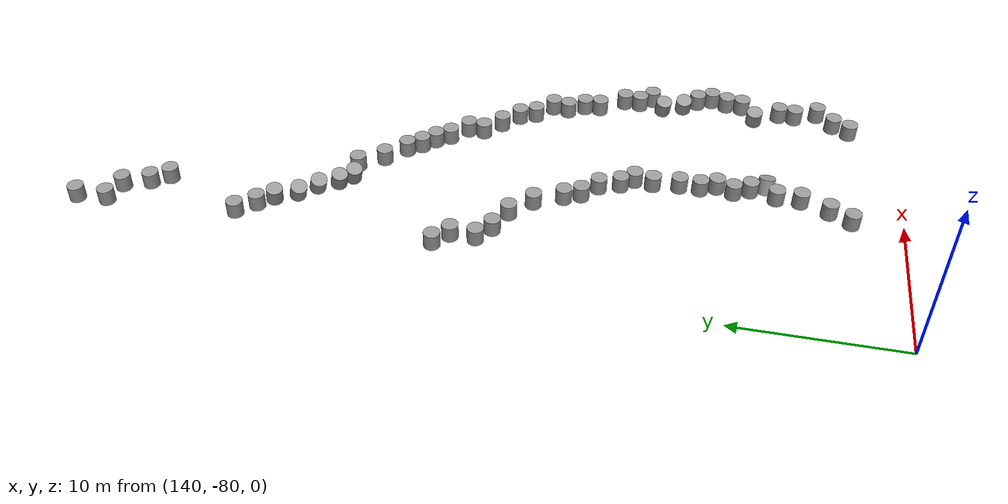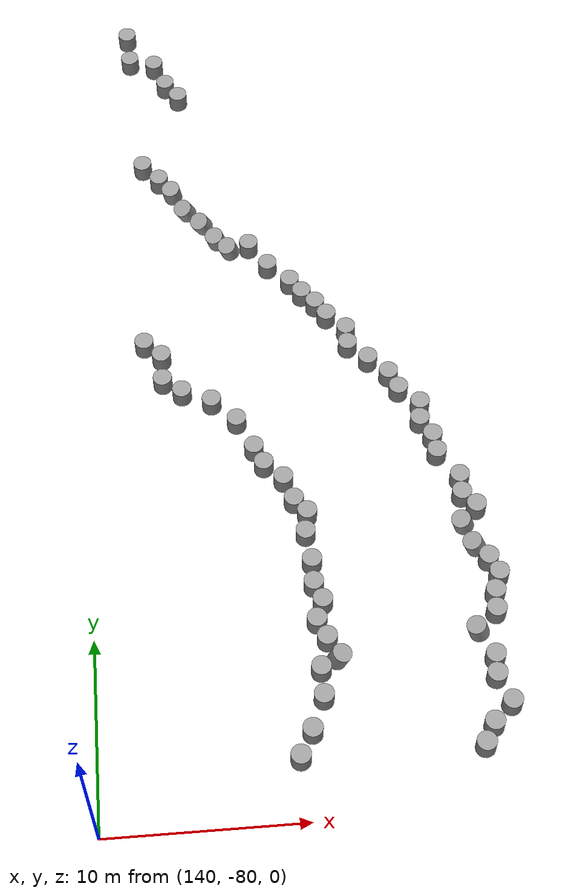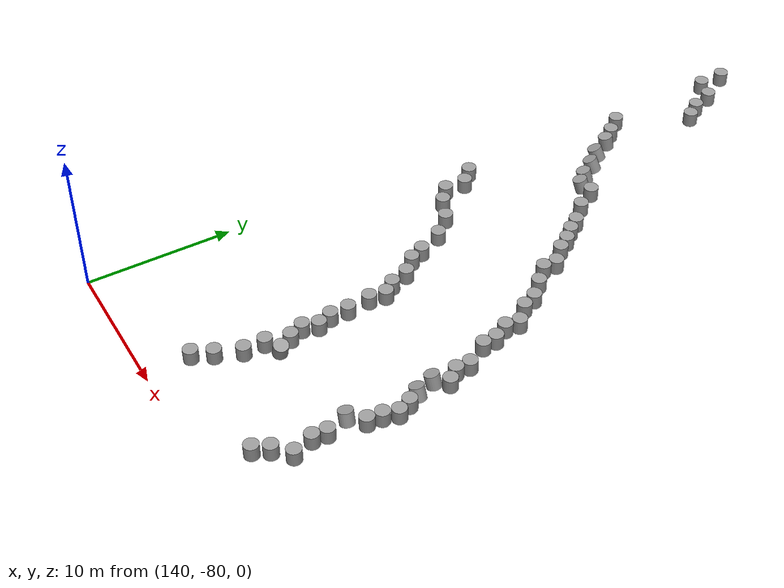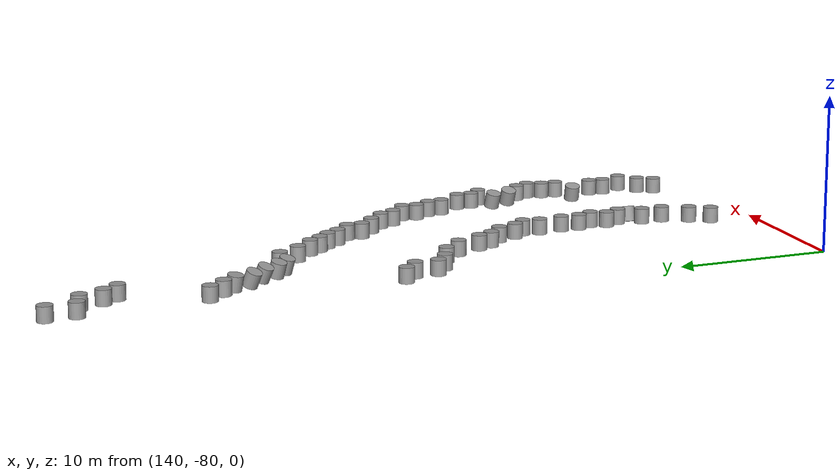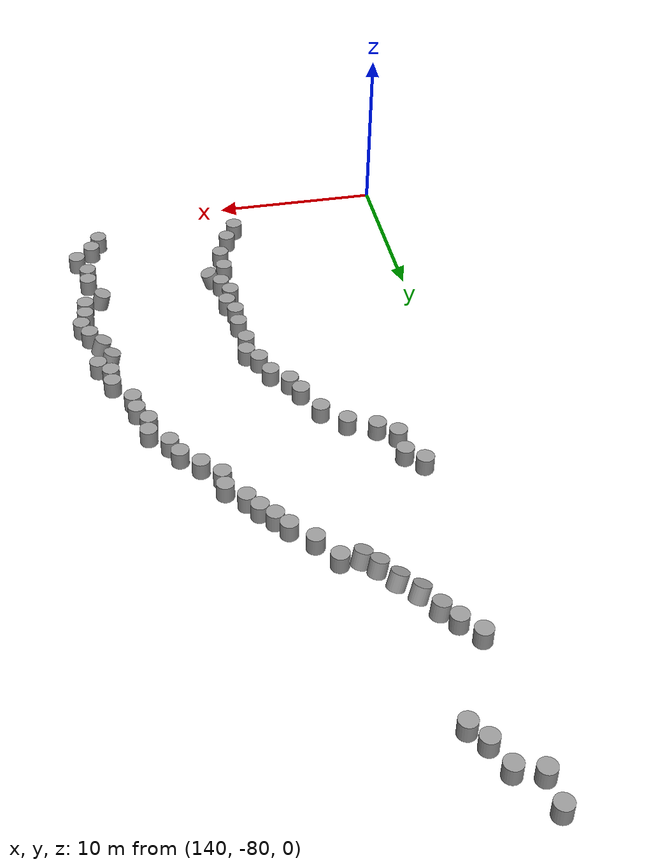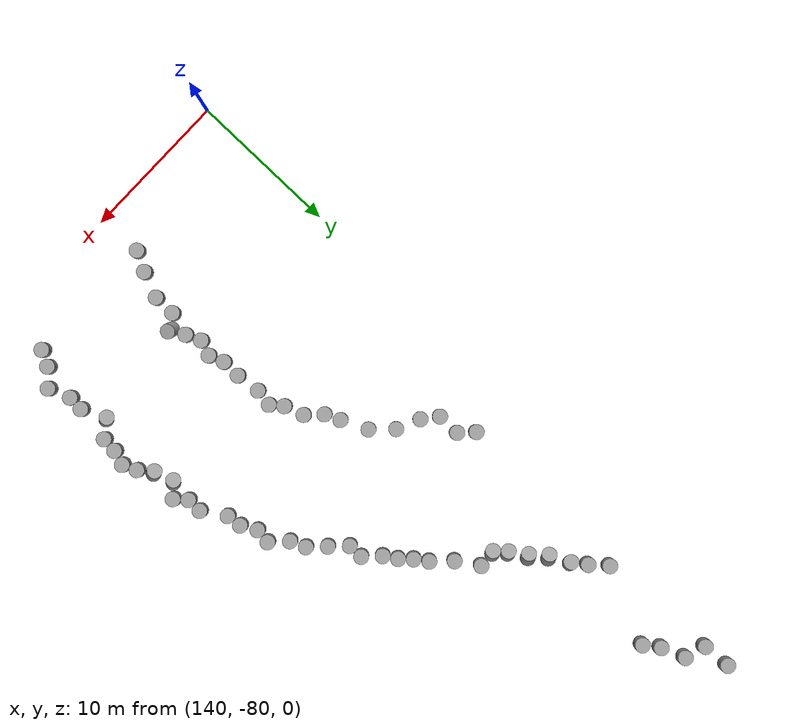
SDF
<sdf version="1.7">
 <world name="default">
  <model name="unit_cylinder_85_clone_244_clone_579">
   <pose>142.895 -31.1309 0.4513 2.2e-05 -2.2e-05 0.000469</pose>
   <link name="link">
    <inertial>
     <mass>1</mass>
     <inertia><ixx>0.145833</ixx><ixy>0</ixy><ixz>0</ixz><iyy>0.145833</iyy><iyz>0</iyz><izz>0.125</izz></inertia>
    </inertial>
    <collision name="collision">
     <geometry><cylinder><radius>0.5</radius><length>1</length></cylinder></geometry>
    </collision>
    <visual name="visual">
     <geometry><cylinder><radius>0.5</radius><length>1</length></cylinder></geometry>
     <material>
      <script><name>Gazebo/Grey</name><uri>file://media/materials/scripts/gazebo.material</uri></script>
     </material>
    </visual>
   </link>
  </model>
  <model name="unit_cylinder_85_clone_244_clone_580">
   <pose>143 -33.0001 0.451267 1.7e-05 -2.3e-05 0.00053</pose>
   <link name="link">
    <inertial>
     <mass>1</mass>
     <inertia><ixx>0.145833</ixx><ixy>0</ixy><ixz>0</ixz><iyy>0.145833</iyy><iyz>0</iyz><izz>0.125</izz></inertia>
    </inertial>
    <collision name="collision">
     <geometry><cylinder><radius>0.5</radius><length>1</length></cylinder></geometry>
    </collision>
    <visual name="visual">
     <geometry><cylinder><radius>0.5</radius><length>1</length></cylinder></geometry>
     <material>
      <script><name>Gazebo/Grey</name><uri>file://media/materials/scripts/gazebo.material</uri></script>
     </material>
    </visual>
   </link>
  </model>
  <model name="unit_cylinder_85_clone_244_clone_581">
   <pose>144.402 -33.4464 0.451295 1.4e-05 -3e-05 0.000472</pose>
   <link name="link">
    <inertial>
     <mass>1</mass>
     <inertia><ixx>0.145833</ixx><ixy>0</ixy><ixz>0</ixz><iyy>0.145833</iyy><iyz>0</iyz><izz>0.125</izz></inertia>
    </inertial>
    <collision name="collision">
     <geometry><cylinder><radius>0.5</radius><length>1</length></cylinder></geometry>
    </collision>
    <visual name="visual">
     <geometry><cylinder><radius>0.5</radius><length>1</length></cylinder></geometry>
     <material>
      <script><name>Gazebo/Grey</name><uri>file://media/materials/scripts/gazebo.material</uri></script>
     </material>
    </visual>
   </link>
  </model>
  <model name="unit_cylinder_85_clone_244_clone_582">
   <pose>145 -35 0.451266 1.9e-05 -2.4e-05 0.000469</pose>
   <link name="link">
    <inertial>
     <mass>1</mass>
     <inertia><ixx>0.145833</ixx><ixy>0</ixy><ixz>0</ixz><iyy>0.145833</iyy><iyz>0</iyz><izz>0.125</izz></inertia>
    </inertial>
    <collision name="collision">
     <geometry><cylinder><radius>0.5</radius><length>1</length></cylinder></geometry>
    </collision>
    <visual name="visual">
     <geometry><cylinder><radius>0.5</radius><length>1</length></cylinder></geometry>
     <material>
      <script><name>Gazebo/Grey</name><uri>file://media/materials/scripts/gazebo.material</uri></script>
     </material>
    </visual>
   </link>
  </model>
  <model name="unit_cylinder_85_clone_244_clone_583">
   <pose>145.705 -36.0011 0.451266 1.7e-05 -2.2e-05 0.00047</pose>
   <link name="link">
    <inertial>
     <mass>1</mass>
     <inertia><ixx>0.145833</ixx><ixy>0</ixy><ixz>0</ixz><iyy>0.145833</iyy><iyz>0</iyz><izz>0.125</izz></inertia>
    </inertial>
    <collision name="collision">
     <geometry><cylinder><radius>0.5</radius><length>1</length></cylinder></geometry>
    </collision>
    <visual name="visual">
     <geometry><cylinder><radius>0.5</radius><length>1</length></cylinder></geometry>
     <material>
      <script><name>Gazebo/Grey</name><uri>file://media/materials/scripts/gazebo.material</uri></script>
     </material>
    </visual>
   </link>
  </model>
  <model name="unit_cylinder_85_clone_244_clone_684">
   <pose>143.109 -53.1294 0.449992 0 -0 0.000582</pose>
   <link name="link">
    <inertial>
     <mass>1</mass>
     <inertia><ixx>0.145833</ixx><ixy>0</ixy><ixz>0</ixz><iyy>0.145833</iyy><iyz>0</iyz><izz>0.125</izz></inertia>
    </inertial>
    <collision name="collision">
     <geometry><cylinder><radius>0.5</radius><length>1</length></cylinder></geometry>
    </collision>
    <visual name="visual">
     <geometry><cylinder><radius>0.5</radius><length>1</length></cylinder></geometry>
     <material>
      <script><name>Gazebo/Grey</name><uri>file://media/materials/scripts/gazebo.material</uri></script>
     </material>
    </visual>
   </link>
  </model>
  <model name="unit_cylinder_85_clone_244_clone_685">
   <pose>143.999 -54.0003 0.450646 0.000793 -0.001022 0.000211</pose>
   <link name="link">
    <inertial>
     <mass>1</mass>
     <inertia><ixx>0.145833</ixx><ixy>0</ixy><ixz>0</ixz><iyy>0.145833</iyy><iyz>0</iyz><izz>0.125</izz></inertia>
    </inertial>
    <collision name="collision">
     <geometry><cylinder><radius>0.5</radius><length>1</length></cylinder></geometry>
    </collision>
    <visual name="visual">
     <geometry><cylinder><radius>0.5</radius><length>1</length></cylinder></geometry>
     <material>
      <script><name>Gazebo/Grey</name><uri>file://media/materials/scripts/gazebo.material</uri></script>
     </material>
    </visual>
   </link>
  </model>
  <model name="unit_cylinder_85_clone_244_clone_686">
   <pose>144 -55.5129 0.449998 -6e-06 -1e-06 0.000487</pose>
   <link name="link">
    <inertial>
     <mass>1</mass>
     <inertia><ixx>0.145833</ixx><ixy>0</ixy><ixz>0</ixz><iyy>0.145833</iyy><iyz>0</iyz><izz>0.125</izz></inertia>
    </inertial>
    <collision name="collision">
     <geometry><cylinder><radius>0.5</radius><length>1</length></cylinder></geometry>
    </collision>
    <visual name="visual">
     <geometry><cylinder><radius>0.5</radius><length>1</length></cylinder></geometry>
     <material>
      <script><name>Gazebo/Grey</name><uri>file://media/materials/scripts/gazebo.material</uri></script>
     </material>
    </visual>
   </link>
  </model>
  <model name="unit_cylinder_85_clone_244_clone_695">
   <pose>145.043 -42.9427 0.478763 0.109918 -0.131961 0.024254</pose>
   <link name="link">
    <inertial>
     <mass>1</mass>
     <inertia><ixx>0.145833</ixx><ixy>0</ixy><ixz>0</ixz><iyy>0.145833</iyy><iyz>0</iyz><izz>0.125</izz></inertia>
    </inertial>
    <collision name="collision">
     <geometry><cylinder><radius>0.5</radius><length>1</length></cylinder></geometry>
    </collision>
    <visual name="visual">
     <geometry><cylinder><radius>0.5</radius><length>1</length></cylinder></geometry>
     <material>
      <script><name>Gazebo/Grey</name><uri>file://media/materials/scripts/gazebo.material</uri></script>
     </material>
    </visual>
   </link>
  </model>
  <model name="unit_cylinder_85_clone_244_clone_697">
   <pose>146.602 -45.1969 0.407513 0.258595 -0.320045 0.023068</pose>
   <link name="link">
    <inertial>
     <mass>1</mass>
     <inertia><ixx>0.145833</ixx><ixy>0</ixy><ixz>0</ixz><iyy>0.145833</iyy><iyz>0</iyz><izz>0.125</izz></inertia>
    </inertial>
    <collision name="collision">
     <geometry><cylinder><radius>0.5</radius><length>1</length></cylinder></geometry>
    </collision>
    <visual name="visual">
     <geometry><cylinder><radius>0.5</radius><length>1</length></cylinder></geometry>
     <material>
      <script><name>Gazebo/Grey</name><uri>file://media/materials/scripts/gazebo.material</uri></script>
     </material>
    </visual>
   </link>
  </model>
  <model name="unit_cylinder_85_clone_244_clone_698">
   <pose>143.464 -41.0024 0.453399 0.005885 -0.00531 0.005545</pose>
   <link name="link">
    <inertial>
     <mass>1</mass>
     <inertia><ixx>0.145833</ixx><ixy>0</ixy><ixz>0</ixz><iyy>0.145833</iyy><iyz>0</iyz><izz>0.125</izz></inertia>
    </inertial>
    <collision name="collision">
     <geometry><cylinder><radius>0.5</radius><length>1</length></cylinder></geometry>
    </collision>
    <visual name="visual">
     <geometry><cylinder><radius>0.5</radius><length>1</length></cylinder></geometry>
     <material>
      <script><name>Gazebo/Grey</name><uri>file://media/materials/scripts/gazebo.material</uri></script>
     </material>
    </visual>
   </link>
  </model>
  <model name="unit_cylinder_85_clone_244_clone_700">
   <pose>145.725 -44.2146 0.404015 0.283249 -0.279741 -0.089596</pose>
   <link name="link">
    <inertial>
     <mass>1</mass>
     <inertia><ixx>0.145833</ixx><ixy>0</ixy><ixz>0</ixz><iyy>0.145833</iyy><iyz>0</iyz><izz>0.125</izz></inertia>
    </inertial>
    <collision name="collision">
     <geometry><cylinder><radius>0.5</radius><length>1</length></cylinder></geometry>
    </collision>
    <visual name="visual">
     <geometry><cylinder><radius>0.5</radius><length>1</length></cylinder></geometry>
     <material>
      <script><name>Gazebo/Grey</name><uri>file://media/materials/scripts/gazebo.material</uri></script>
     </material>
    </visual>
   </link>
  </model>
  <model name="unit_cylinder_85_clone_244_clone_701">
   <pose>144.351 -42.0649 0.45126 -7e-06 8e-06 0.010956</pose>
   <link name="link">
    <inertial>
     <mass>1</mass>
     <inertia><ixx>0.145833</ixx><ixy>0</ixy><ixz>0</ixz><iyy>0.145833</iyy><iyz>0</iyz><izz>0.125</izz></inertia>
    </inertial>
    <collision name="collision">
     <geometry><cylinder><radius>0.5</radius><length>1</length></cylinder></geometry>
    </collision>
    <visual name="visual">
     <geometry><cylinder><radius>0.5</radius><length>1</length></cylinder></geometry>
     <material>
      <script><name>Gazebo/Grey</name><uri>file://media/materials/scripts/gazebo.material</uri></script>
     </material>
    </visual>
   </link>
  </model>
  <model name="unit_cylinder_85_clone_244_clone_696">
   <pose>148.016 -47.0282 0.373863 0.072571 -0.28647 0.4723</pose>
   <link name="link">
    <inertial>
     <mass>1</mass>
     <inertia><ixx>0.145833</ixx><ixy>0</ixy><ixz>0</ixz><iyy>0.145833</iyy><iyz>0</iyz><izz>0.125</izz></inertia>
    </inertial>
    <collision name="collision">
     <geometry><cylinder><radius>0.5</radius><length>1</length></cylinder></geometry>
    </collision>
    <visual name="visual">
     <geometry><cylinder><radius>0.5</radius><length>1</length></cylinder></geometry>
     <material>
      <script><name>Gazebo/Grey</name><uri>file://media/materials/scripts/gazebo.material</uri></script>
     </material>
    </visual>
   </link>
  </model>
  <model name="unit_cylinder_85_clone_244_clone_702">
   <pose>147.334 -46.2965 0.364822 0.249156 -0.101854 -0.468961</pose>
   <link name="link">
    <inertial>
     <mass>1</mass>
     <inertia><ixx>0.145833</ixx><ixy>0</ixy><ixz>0</ixz><iyy>0.145833</iyy><iyz>0</iyz><izz>0.125</izz></inertia>
    </inertial>
    <collision name="collision">
     <geometry><cylinder><radius>0.5</radius><length>1</length></cylinder></geometry>
    </collision>
    <visual name="visual">
     <geometry><cylinder><radius>0.5</radius><length>1</length></cylinder></geometry>
     <material>
      <script><name>Gazebo/Grey</name><uri>file://media/materials/scripts/gazebo.material</uri></script>
     </material>
    </visual>
   </link>
  </model>
  <model name="unit_cylinder_85_clone_244_clone_703">
   <pose>149.132 -47.0003 0.451254 -1.6e-05 2e-05 -0.00028</pose>
   <link name="link">
    <inertial>
     <mass>1</mass>
     <inertia><ixx>0.145833</ixx><ixy>0</ixy><ixz>0</ixz><iyy>0.145833</iyy><iyz>0</iyz><izz>0.125</izz></inertia>
    </inertial>
    <collision name="collision">
     <geometry><cylinder><radius>0.5</radius><length>1</length></cylinder></geometry>
    </collision>
    <visual name="visual">
     <geometry><cylinder><radius>0.5</radius><length>1</length></cylinder></geometry>
     <material>
      <script><name>Gazebo/Grey</name><uri>file://media/materials/scripts/gazebo.material</uri></script>
     </material>
    </visual>
   </link>
  </model>
  <model name="unit_cylinder_85_clone_244_clone_704">
   <pose>150.081 -48.4573 0.451275 -2.8e-05 4.2e-05 0.00037</pose>
   <link name="link">
    <inertial>
     <mass>1</mass>
     <inertia><ixx>0.145833</ixx><ixy>0</ixy><ixz>0</ixz><iyy>0.145833</iyy><iyz>0</iyz><izz>0.125</izz></inertia>
    </inertial>
    <collision name="collision">
     <geometry><cylinder><radius>0.5</radius><length>1</length></cylinder></geometry>
    </collision>
    <visual name="visual">
     <geometry><cylinder><radius>0.5</radius><length>1</length></cylinder></geometry>
     <material>
      <script><name>Gazebo/Grey</name><uri>file://media/materials/scripts/gazebo.material</uri></script>
     </material>
    </visual>
   </link>
  </model>
  <model name="unit_cylinder_85_clone_244_clone_705">
   <pose>151.222 -49.619 0.451251 -2e-06 4e-06 -0.005144</pose>
   <link name="link">
    <inertial>
     <mass>1</mass>
     <inertia><ixx>0.145833</ixx><ixy>0</ixy><ixz>0</ixz><iyy>0.145833</iyy><iyz>0</iyz><izz>0.125</izz></inertia>
    </inertial>
    <collision name="collision">
     <geometry><cylinder><radius>0.5</radius><length>1</length></cylinder></geometry>
    </collision>
    <visual name="visual">
     <geometry><cylinder><radius>0.5</radius><length>1</length></cylinder></geometry>
     <material>
      <script><name>Gazebo/Grey</name><uri>file://media/materials/scripts/gazebo.material</uri></script>
     </material>
    </visual>
   </link>
  </model>
  <model name="unit_cylinder_85_clone_244_clone_706">
   <pose>151.801 -50.444 0.45125 -5e-06 1e-05 -0.005197</pose>
   <link name="link">
    <inertial>
     <mass>1</mass>
     <inertia><ixx>0.145833</ixx><ixy>0</ixy><ixz>0</ixz><iyy>0.145833</iyy><iyz>0</iyz><izz>0.125</izz></inertia>
    </inertial>
    <collision name="collision">
     <geometry><cylinder><radius>0.5</radius><length>1</length></cylinder></geometry>
    </collision>
    <visual name="visual">
     <geometry><cylinder><radius>0.5</radius><length>1</length></cylinder></geometry>
     <material>
      <script><name>Gazebo/Grey</name><uri>file://media/materials/scripts/gazebo.material</uri></script>
     </material>
    </visual>
   </link>
  </model>
  <model name="unit_cylinder_85_clone_244_clone_707">
   <pose>152.476 -51.1882 0.451249 -6e-06 -3e-06 9.5e-05</pose>
   <link name="link">
    <inertial>
     <mass>1</mass>
     <inertia><ixx>0.145833</ixx><ixy>0</ixy><ixz>0</ixz><iyy>0.145833</iyy><iyz>0</iyz><izz>0.125</izz></inertia>
    </inertial>
    <collision name="collision">
     <geometry><cylinder><radius>0.5</radius><length>1</length></cylinder></geometry>
    </collision>
    <visual name="visual">
     <geometry><cylinder><radius>0.5</radius><length>1</length></cylinder></geometry>
     <material>
      <script><name>Gazebo/Grey</name><uri>file://media/materials/scripts/gazebo.material</uri></script>
     </material>
    </visual>
   </link>
  </model>
  <model name="unit_cylinder_85_clone_244_clone_708">
   <pose>154 -53.0057 0.451249 -2.1e-05 -0 -0.00096</pose>
   <link name="link">
    <inertial>
     <mass>1</mass>
     <inertia><ixx>0.145833</ixx><ixy>0</ixy><ixz>0</ixz><iyy>0.145833</iyy><iyz>0</iyz><izz>0.125</izz></inertia>
    </inertial>
    <collision name="collision">
     <geometry><cylinder><radius>0.5</radius><length>1</length></cylinder></geometry>
    </collision>
    <visual name="visual">
     <geometry><cylinder><radius>0.5</radius><length>1</length></cylinder></geometry>
     <material>
      <script><name>Gazebo/Grey</name><uri>file://media/materials/scripts/gazebo.material</uri></script>
     </material>
    </visual>
   </link>
  </model>
  <model name="unit_cylinder_85_clone_244_clone_709">
   <pose>153.019 -52.0279 0.45125 -8e-06 7e-06 -0.000444</pose>
   <link name="link">
    <inertial>
     <mass>1</mass>
     <inertia><ixx>0.145833</ixx><ixy>0</ixy><ixz>0</ixz><iyy>0.145833</iyy><iyz>0</iyz><izz>0.125</izz></inertia>
    </inertial>
    <collision name="collision">
     <geometry><cylinder><radius>0.5</radius><length>1</length></cylinder></geometry>
    </collision>
    <visual name="visual">
     <geometry><cylinder><radius>0.5</radius><length>1</length></cylinder></geometry>
     <material>
      <script><name>Gazebo/Grey</name><uri>file://media/materials/scripts/gazebo.material</uri></script>
     </material>
    </visual>
   </link>
  </model>
  <model name="unit_cylinder_85_clone_244_clone_710">
   <pose>155 -54.9999 0.451265 -1.9e-05 2.5e-05 0.00033</pose>
   <link name="link">
    <inertial>
     <mass>1</mass>
     <inertia><ixx>0.145833</ixx><ixy>0</ixy><ixz>0</ixz><iyy>0.145833</iyy><iyz>0</iyz><izz>0.125</izz></inertia>
    </inertial>
    <collision name="collision">
     <geometry><cylinder><radius>0.5</radius><length>1</length></cylinder></geometry>
    </collision>
    <visual name="visual">
     <geometry><cylinder><radius>0.5</radius><length>1</length></cylinder></geometry>
     <material>
      <script><name>Gazebo/Grey</name><uri>file://media/materials/scripts/gazebo.material</uri></script>
     </material>
    </visual>
   </link>
  </model>
  <model name="unit_cylinder_85_clone_244_clone_711">
   <pose>156.425 -57.0001 0.451263 -1.2e-05 2.5e-05 0.000409</pose>
   <link name="link">
    <inertial>
     <mass>1</mass>
     <inertia><ixx>0.145833</ixx><ixy>0</ixy><ixz>0</ixz><iyy>0.145833</iyy><iyz>0</iyz><izz>0.125</izz></inertia>
    </inertial>
    <collision name="collision">
     <geometry><cylinder><radius>0.5</radius><length>1</length></cylinder></geometry>
    </collision>
    <visual name="visual">
     <geometry><cylinder><radius>0.5</radius><length>1</length></cylinder></geometry>
     <material>
      <script><name>Gazebo/Grey</name><uri>file://media/materials/scripts/gazebo.material</uri></script>
     </material>
    </visual>
   </link>
  </model>
  <model name="unit_cylinder_85_clone_244_clone_712">
   <pose>157.459 -57.9999 0.45125 3e-06 5e-06 0.00049</pose>
   <link name="link">
    <inertial>
     <mass>1</mass>
     <inertia><ixx>0.145833</ixx><ixy>0</ixy><ixz>0</ixz><iyy>0.145833</iyy><iyz>0</iyz><izz>0.125</izz></inertia>
    </inertial>
    <collision name="collision">
     <geometry><cylinder><radius>0.5</radius><length>1</length></cylinder></geometry>
    </collision>
    <visual name="visual">
     <geometry><cylinder><radius>0.5</radius><length>1</length></cylinder></geometry>
     <material>
      <script><name>Gazebo/Grey</name><uri>file://media/materials/scripts/gazebo.material</uri></script>
     </material>
    </visual>
   </link>
  </model>
  <model name="unit_cylinder_85_clone_244_clone_713">
   <pose>157.896 -60.014 0.451261 -1.8e-05 3e-05 -0.00103</pose>
   <link name="link">
    <inertial>
     <mass>1</mass>
     <inertia><ixx>0.145833</ixx><ixy>0</ixy><ixz>0</ixz><iyy>0.145833</iyy><iyz>0</iyz><izz>0.125</izz></inertia>
    </inertial>
    <collision name="collision">
     <geometry><cylinder><radius>0.5</radius><length>1</length></cylinder></geometry>
    </collision>
    <visual name="visual">
     <geometry><cylinder><radius>0.5</radius><length>1</length></cylinder></geometry>
     <material>
      <script><name>Gazebo/Grey</name><uri>file://media/materials/scripts/gazebo.material</uri></script>
     </material>
    </visual>
   </link>
  </model>
  <model name="unit_cylinder_85_clone_244_clone_714">
   <pose>158.001 -61.0085 0.451265 -1.3e-05 4.9e-05 0.005868</pose>
   <link name="link">
    <inertial>
     <mass>1</mass>
     <inertia><ixx>0.145833</ixx><ixy>0</ixy><ixz>0</ixz><iyy>0.145833</iyy><iyz>0</iyz><izz>0.125</izz></inertia>
    </inertial>
    <collision name="collision">
     <geometry><cylinder><radius>0.5</radius><length>1</length></cylinder></geometry>
    </collision>
    <visual name="visual">
     <geometry><cylinder><radius>0.5</radius><length>1</length></cylinder></geometry>
     <material>
      <script><name>Gazebo/Grey</name><uri>file://media/materials/scripts/gazebo.material</uri></script>
     </material>
    </visual>
   </link>
  </model>
  <model name="unit_cylinder_85_clone_244_clone_715">
   <pose>158.986 -63.5418 0.451215 -7.8e-05 0.000287 0.030668</pose>
   <link name="link">
    <inertial>
     <mass>1</mass>
     <inertia><ixx>0.145833</ixx><ixy>0</ixy><ixz>0</ixz><iyy>0.145833</iyy><iyz>0</iyz><izz>0.125</izz></inertia>
    </inertial>
    <collision name="collision">
     <geometry><cylinder><radius>0.5</radius><length>1</length></cylinder></geometry>
    </collision>
    <visual name="visual">
     <geometry><cylinder><radius>0.5</radius><length>1</length></cylinder></geometry>
     <material>
      <script><name>Gazebo/Grey</name><uri>file://media/materials/scripts/gazebo.material</uri></script>
     </material>
    </visual>
   </link>
  </model>
  <model name="unit_cylinder_85_clone_244_clone_716">
   <pose>159.637 -64.3099 0.451123 -1.8e-05 0.000256 0.066203</pose>
   <link name="link">
    <inertial>
     <mass>1</mass>
     <inertia><ixx>0.145833</ixx><ixy>0</ixy><ixz>0</ixz><iyy>0.145833</iyy><iyz>0</iyz><izz>0.125</izz></inertia>
    </inertial>
    <collision name="collision">
     <geometry><cylinder><radius>0.5</radius><length>1</length></cylinder></geometry>
    </collision>
    <visual name="visual">
     <geometry><cylinder><radius>0.5</radius><length>1</length></cylinder></geometry>
     <material>
      <script><name>Gazebo/Grey</name><uri>file://media/materials/scripts/gazebo.material</uri></script>
     </material>
    </visual>
   </link>
  </model>
  <model name="unit_cylinder_85_clone_244_clone_717">
   <pose>158.847 -65.088 0.360946 0.098918 -0.238436 -0.069266</pose>
   <link name="link">
    <inertial>
     <mass>1</mass>
     <inertia><ixx>0.145833</ixx><ixy>0</ixy><ixz>0</ixz><iyy>0.145833</iyy><iyz>0</iyz><izz>0.125</izz></inertia>
    </inertial>
    <collision name="collision">
     <geometry><cylinder><radius>0.5</radius><length>1</length></cylinder></geometry>
    </collision>
    <visual name="visual">
     <geometry><cylinder><radius>0.5</radius><length>1</length></cylinder></geometry>
     <material>
      <script><name>Gazebo/Grey</name><uri>file://media/materials/scripts/gazebo.material</uri></script>
     </material>
    </visual>
   </link>
  </model>
  <model name="unit_cylinder_85_clone_244_clone_718">
   <pose>158.998 -62.5414 0.451197 3e-06 0.000122 -0.006848</pose>
   <link name="link">
    <inertial>
     <mass>1</mass>
     <inertia><ixx>0.145833</ixx><ixy>0</ixy><ixz>0</ixz><iyy>0.145833</iyy><iyz>0</iyz><izz>0.125</izz></inertia>
    </inertial>
    <collision name="collision">
     <geometry><cylinder><radius>0.5</radius><length>1</length></cylinder></geometry>
    </collision>
    <visual name="visual">
     <geometry><cylinder><radius>0.5</radius><length>1</length></cylinder></geometry>
     <material>
      <script><name>Gazebo/Grey</name><uri>file://media/materials/scripts/gazebo.material</uri></script>
     </material>
    </visual>
   </link>
  </model>
  <model name="unit_cylinder_85_clone_244_clone_719">
   <pose>157.342 -59.0003 0.451263 -1.4e-05 2.9e-05 0.000469</pose>
   <link name="link">
    <inertial>
     <mass>1</mass>
     <inertia><ixx>0.145833</ixx><ixy>0</ixy><ixz>0</ixz><iyy>0.145833</iyy><iyz>0</iyz><izz>0.125</izz></inertia>
    </inertial>
    <collision name="collision">
     <geometry><cylinder><radius>0.5</radius><length>1</length></cylinder></geometry>
    </collision>
    <visual name="visual">
     <geometry><cylinder><radius>0.5</radius><length>1</length></cylinder></geometry>
     <material>
      <script><name>Gazebo/Grey</name><uri>file://media/materials/scripts/gazebo.material</uri></script>
     </material>
    </visual>
   </link>
  </model>
  <model name="unit_cylinder_85_clone_244_clone_720">
   <pose>156 -56.0006 0.451256 -9e-06 1e-05 -0.001278</pose>
   <link name="link">
    <inertial>
     <mass>1</mass>
     <inertia><ixx>0.145833</ixx><ixy>0</ixy><ixz>0</ixz><iyy>0.145833</iyy><iyz>0</iyz><izz>0.125</izz></inertia>
    </inertial>
    <collision name="collision">
     <geometry><cylinder><radius>0.5</radius><length>1</length></cylinder></geometry>
    </collision>
    <visual name="visual">
     <geometry><cylinder><radius>0.5</radius><length>1</length></cylinder></geometry>
     <material>
      <script><name>Gazebo/Grey</name><uri>file://media/materials/scripts/gazebo.material</uri></script>
     </material>
    </visual>
   </link>
  </model>
  <model name="unit_cylinder_85_clone_244_clone_721">
   <pose>154.001 -54.0057 0.451265 -2.3e-05 2.1e-05 -0.002132</pose>
   <link name="link">
    <inertial>
     <mass>1</mass>
     <inertia><ixx>0.145833</ixx><ixy>0</ixy><ixz>0</ixz><iyy>0.145833</iyy><iyz>0</iyz><izz>0.125</izz></inertia>
    </inertial>
    <collision name="collision">
     <geometry><cylinder><radius>0.5</radius><length>1</length></cylinder></geometry>
    </collision>
    <visual name="visual">
     <geometry><cylinder><radius>0.5</radius><length>1</length></cylinder></geometry>
     <material>
      <script><name>Gazebo/Grey</name><uri>file://media/materials/scripts/gazebo.material</uri></script>
     </material>
    </visual>
   </link>
  </model>
  <model name="unit_cylinder_85_clone_244_clone_722">
   <pose>144.988 -56.3099 0.449994 -6e-06 -4e-06 0.000468</pose>
   <link name="link">
    <inertial>
     <mass>1</mass>
     <inertia><ixx>0.145833</ixx><ixy>0</ixy><ixz>0</ixz><iyy>0.145833</iyy><iyz>0</iyz><izz>0.125</izz></inertia>
    </inertial>
    <collision name="collision">
     <geometry><cylinder><radius>0.5</radius><length>1</length></cylinder></geometry>
    </collision>
    <visual name="visual">
     <geometry><cylinder><radius>0.5</radius><length>1</length></cylinder></geometry>
     <material>
      <script><name>Gazebo/Grey</name><uri>file://media/materials/scripts/gazebo.material</uri></script>
     </material>
    </visual>
   </link>
  </model>
  <model name="unit_cylinder_85_clone_244_clone_723">
   <pose>146.519 -57.0005 0.450756 0.000932 -0.001205 0.000438</pose>
   <link name="link">
    <inertial>
     <mass>1</mass>
     <inertia><ixx>0.145833</ixx><ixy>0</ixy><ixz>0</ixz><iyy>0.145833</iyy><iyz>0</iyz><izz>0.125</izz></inertia>
    </inertial>
    <collision name="collision">
     <geometry><cylinder><radius>0.5</radius><length>1</length></cylinder></geometry>
    </collision>
    <visual name="visual">
     <geometry><cylinder><radius>0.5</radius><length>1</length></cylinder></geometry>
     <material>
      <script><name>Gazebo/Grey</name><uri>file://media/materials/scripts/gazebo.material</uri></script>
     </material>
    </visual>
   </link>
  </model>
  <model name="unit_cylinder_85_clone_244_clone_724">
   <pose>147.761 -58.2785 0.450989 0.001215 -0.001563 0.000468</pose>
   <link name="link">
    <inertial>
     <mass>1</mass>
     <inertia><ixx>0.145833</ixx><ixy>0</ixy><ixz>0</ixz><iyy>0.145833</iyy><iyz>0</iyz><izz>0.125</izz></inertia>
    </inertial>
    <collision name="collision">
     <geometry><cylinder><radius>0.5</radius><length>1</length></cylinder></geometry>
    </collision>
    <visual name="visual">
     <geometry><cylinder><radius>0.5</radius><length>1</length></cylinder></geometry>
     <material>
      <script><name>Gazebo/Grey</name><uri>file://media/materials/scripts/gazebo.material</uri></script>
     </material>
    </visual>
   </link>
  </model>
  <model name="unit_cylinder_85_clone_244_clone_725">
   <pose>148.557 -60.0004 0.450155 0.000218 -0.000236 0.000891</pose>
   <link name="link">
    <inertial>
     <mass>1</mass>
     <inertia><ixx>0.145833</ixx><ixy>0</ixy><ixz>0</ixz><iyy>0.145833</iyy><iyz>0</iyz><izz>0.125</izz></inertia>
    </inertial>
    <collision name="collision">
     <geometry><cylinder><radius>0.5</radius><length>1</length></cylinder></geometry>
    </collision>
    <visual name="visual">
     <geometry><cylinder><radius>0.5</radius><length>1</length></cylinder></geometry>
     <material>
      <script><name>Gazebo/Grey</name><uri>file://media/materials/scripts/gazebo.material</uri></script>
     </material>
    </visual>
   </link>
  </model>
  <model name="unit_cylinder_85_clone_244_clone_726">
   <pose>149 -61 0.45 0 -0 0.000545</pose>
   <link name="link">
    <inertial>
     <mass>1</mass>
     <inertia><ixx>0.145833</ixx><ixy>0</ixy><ixz>0</ixz><iyy>0.145833</iyy><iyz>0</iyz><izz>0.125</izz></inertia>
    </inertial>
    <collision name="collision">
     <geometry><cylinder><radius>0.5</radius><length>1</length></cylinder></geometry>
    </collision>
    <visual name="visual">
     <geometry><cylinder><radius>0.5</radius><length>1</length></cylinder></geometry>
     <material>
      <script><name>Gazebo/Grey</name><uri>file://media/materials/scripts/gazebo.material</uri></script>
     </material>
    </visual>
   </link>
  </model>
  <model name="unit_cylinder_85_clone_244_clone_727">
   <pose>149.95 -61.9383 0.450911 0.000807 -0.001636 0.000645</pose>
   <link name="link">
    <inertial>
     <mass>1</mass>
     <inertia><ixx>0.145833</ixx><ixy>0</ixy><ixz>0</ixz><iyy>0.145833</iyy><iyz>0</iyz><izz>0.125</izz></inertia>
    </inertial>
    <collision name="collision">
     <geometry><cylinder><radius>0.5</radius><length>1</length></cylinder></geometry>
    </collision>
    <visual name="visual">
     <geometry><cylinder><radius>0.5</radius><length>1</length></cylinder></geometry>
     <material>
      <script><name>Gazebo/Grey</name><uri>file://media/materials/scripts/gazebo.material</uri></script>
     </material>
    </visual>
   </link>
  </model>
  <model name="unit_cylinder_85_clone_244_clone_728">
   <pose>150.387 -63.2236 0.450745 0.00058 -0.001373 -0.003062</pose>
   <link name="link">
    <inertial>
     <mass>1</mass>
     <inertia><ixx>0.145833</ixx><ixy>0</ixy><ixz>0</ixz><iyy>0.145833</iyy><iyz>0</iyz><izz>0.125</izz></inertia>
    </inertial>
    <collision name="collision">
     <geometry><cylinder><radius>0.5</radius><length>1</length></cylinder></geometry>
    </collision>
    <visual name="visual">
     <geometry><cylinder><radius>0.5</radius><length>1</length></cylinder></geometry>
     <material>
      <script><name>Gazebo/Grey</name><uri>file://media/materials/scripts/gazebo.material</uri></script>
     </material>
    </visual>
   </link>
  </model>
  <model name="unit_cylinder_85_clone_244_clone_729">
   <pose>151.005 -64.0096 0.451251 0.000259 -0.001026 0.030504</pose>
   <link name="link">
    <inertial>
     <mass>1</mass>
     <inertia><ixx>0.145833</ixx><ixy>0</ixy><ixz>0</ixz><iyy>0.145833</iyy><iyz>0</iyz><izz>0.125</izz></inertia>
    </inertial>
    <collision name="collision">
     <geometry><cylinder><radius>0.5</radius><length>1</length></cylinder></geometry>
    </collision>
    <visual name="visual">
     <geometry><cylinder><radius>0.5</radius><length>1</length></cylinder></geometry>
     <material>
      <script><name>Gazebo/Grey</name><uri>file://media/materials/scripts/gazebo.material</uri></script>
     </material>
    </visual>
   </link>
  </model>
  <model name="unit_cylinder_85_clone_244_clone_730">
   <pose>150.832 -65.1427 0.450608 0.000294 -0.001189 -0.000303</pose>
   <link name="link">
    <inertial>
     <mass>1</mass>
     <inertia><ixx>0.145833</ixx><ixy>0</ixy><ixz>0</ixz><iyy>0.145833</iyy><iyz>0</iyz><izz>0.125</izz></inertia>
    </inertial>
    <collision name="collision">
     <geometry><cylinder><radius>0.5</radius><length>1</length></cylinder></geometry>
    </collision>
    <visual name="visual">
     <geometry><cylinder><radius>0.5</radius><length>1</length></cylinder></geometry>
     <material>
      <script><name>Gazebo/Grey</name><uri>file://media/materials/scripts/gazebo.material</uri></script>
     </material>
    </visual>
   </link>
  </model>
  <model name="unit_cylinder_85_clone_244_clone_731">
   <pose>151.019 -66.7463 0.449999 -9e-06 0 0.000543</pose>
   <link name="link">
    <inertial>
     <mass>1</mass>
     <inertia><ixx>0.145833</ixx><ixy>0</ixy><ixz>0</ixz><iyy>0.145833</iyy><iyz>0</iyz><izz>0.125</izz></inertia>
    </inertial>
    <collision name="collision">
     <geometry><cylinder><radius>0.5</radius><length>1</length></cylinder></geometry>
    </collision>
    <visual name="visual">
     <geometry><cylinder><radius>0.5</radius><length>1</length></cylinder></geometry>
     <material>
      <script><name>Gazebo/Grey</name><uri>file://media/materials/scripts/gazebo.material</uri></script>
     </material>
    </visual>
   </link>
  </model>
  <model name="unit_cylinder_85_clone_244_clone_732">
   <pose>151 -68 0.449998 3e-06 4e-06 0.000487</pose>
   <link name="link">
    <inertial>
     <mass>1</mass>
     <inertia><ixx>0.145833</ixx><ixy>0</ixy><ixz>0</ixz><iyy>0.145833</iyy><iyz>0</iyz><izz>0.125</izz></inertia>
    </inertial>
    <collision name="collision">
     <geometry><cylinder><radius>0.5</radius><length>1</length></cylinder></geometry>
    </collision>
    <visual name="visual">
     <geometry><cylinder><radius>0.5</radius><length>1</length></cylinder></geometry>
     <material>
      <script><name>Gazebo/Grey</name><uri>file://media/materials/scripts/gazebo.material</uri></script>
     </material>
    </visual>
   </link>
  </model>
  <model name="unit_cylinder_85_clone_244_clone_733">
   <pose>151.369 -68.9839 0.450715 -8.2e-05 -0.001428 0.000675</pose>
   <link name="link">
    <inertial>
     <mass>1</mass>
     <inertia><ixx>0.145833</ixx><ixy>0</ixy><ixz>0</ixz><iyy>0.145833</iyy><iyz>0</iyz><izz>0.125</izz></inertia>
    </inertial>
    <collision name="collision">
     <geometry><cylinder><radius>0.5</radius><length>1</length></cylinder></geometry>
    </collision>
    <visual name="visual">
     <geometry><cylinder><radius>0.5</radius><length>1</length></cylinder></geometry>
     <material>
      <script><name>Gazebo/Grey</name><uri>file://media/materials/scripts/gazebo.material</uri></script>
     </material>
    </visual>
   </link>
  </model>
  <model name="unit_cylinder_85_clone_244_clone_734">
   <pose>151 -70 0.449999 -3e-06 1e-06 0.000502</pose>
   <link name="link">
    <inertial>
     <mass>1</mass>
     <inertia><ixx>0.145833</ixx><ixy>0</ixy><ixz>0</ixz><iyy>0.145833</iyy><iyz>0</iyz><izz>0.125</izz></inertia>
    </inertial>
    <collision name="collision">
     <geometry><cylinder><radius>0.5</radius><length>1</length></cylinder></geometry>
    </collision>
    <visual name="visual">
     <geometry><cylinder><radius>0.5</radius><length>1</length></cylinder></geometry>
     <material>
      <script><name>Gazebo/Grey</name><uri>file://media/materials/scripts/gazebo.material</uri></script>
     </material>
    </visual>
   </link>
  </model>
  <model name="unit_cylinder_85_clone_244_clone_735">
   <pose>151.422 -70.9863 0.450869 -8.8e-05 -0.001744 -0.007461</pose>
   <link name="link">
    <inertial>
     <mass>1</mass>
     <inertia><ixx>0.145833</ixx><ixy>0</ixy><ixz>0</ixz><iyy>0.145833</iyy><iyz>0</iyz><izz>0.125</izz></inertia>
    </inertial>
    <collision name="collision">
     <geometry><cylinder><radius>0.5</radius><length>1</length></cylinder></geometry>
    </collision>
    <visual name="visual">
     <geometry><cylinder><radius>0.5</radius><length>1</length></cylinder></geometry>
     <material>
      <script><name>Gazebo/Grey</name><uri>file://media/materials/scripts/gazebo.material</uri></script>
     </material>
    </visual>
   </link>
  </model>
  <model name="unit_cylinder_85_clone_244_clone_736">
   <pose>151.929 -71.9464 0.374479 0.010972 0.296957 -0.01686</pose>
   <link name="link">
    <inertial>
     <mass>1</mass>
     <inertia><ixx>0.145833</ixx><ixy>0</ixy><ixz>0</ixz><iyy>0.145833</iyy><iyz>0</iyz><izz>0.125</izz></inertia>
    </inertial>
    <collision name="collision">
     <geometry><cylinder><radius>0.5</radius><length>1</length></cylinder></geometry>
    </collision>
    <visual name="visual">
     <geometry><cylinder><radius>0.5</radius><length>1</length></cylinder></geometry>
     <material>
      <script><name>Gazebo/Grey</name><uri>file://media/materials/scripts/gazebo.material</uri></script>
     </material>
    </visual>
   </link>
  </model>
  <model name="unit_cylinder_85_clone_244_clone_737">
   <pose>150.996 -72.5553 0.450172 0.000105 -0.000343 -0.037129</pose>
   <link name="link">
    <inertial>
     <mass>1</mass>
     <inertia><ixx>0.145833</ixx><ixy>0</ixy><ixz>0</ixz><iyy>0.145833</iyy><iyz>0</iyz><izz>0.125</izz></inertia>
    </inertial>
    <collision name="collision">
     <geometry><cylinder><radius>0.5</radius><length>1</length></cylinder></geometry>
    </collision>
    <visual name="visual">
     <geometry><cylinder><radius>0.5</radius><length>1</length></cylinder></geometry>
     <material>
      <script><name>Gazebo/Grey</name><uri>file://media/materials/scripts/gazebo.material</uri></script>
     </material>
    </visual>
   </link>
  </model>
  <model name="unit_cylinder_85_clone_244_clone_738">
   <pose>159.284 -66.3872 0.37724 0.026063 -0.304442 0.006594</pose>
   <link name="link">
    <inertial>
     <mass>1</mass>
     <inertia><ixx>0.145833</ixx><ixy>0</ixy><ixz>0</ixz><iyy>0.145833</iyy><iyz>0</iyz><izz>0.125</izz></inertia>
    </inertial>
    <collision name="collision">
     <geometry><cylinder><radius>0.5</radius><length>1</length></cylinder></geometry>
    </collision>
    <visual name="visual">
     <geometry><cylinder><radius>0.5</radius><length>1</length></cylinder></geometry>
     <material>
      <script><name>Gazebo/Grey</name><uri>file://media/materials/scripts/gazebo.material</uri></script>
     </material>
    </visual>
   </link>
  </model>
  <model name="unit_cylinder_85_clone_244_clone_739">
   <pose>159.875 -67.2687 0.451179 4.1e-05 0.000399 0.022118</pose>
   <link name="link">
    <inertial>
     <mass>1</mass>
     <inertia><ixx>0.145833</ixx><ixy>0</ixy><ixz>0</ixz><iyy>0.145833</iyy><iyz>0</iyz><izz>0.125</izz></inertia>
    </inertial>
    <collision name="collision">
     <geometry><cylinder><radius>0.5</radius><length>1</length></cylinder></geometry>
    </collision>
    <visual name="visual">
     <geometry><cylinder><radius>0.5</radius><length>1</length></cylinder></geometry>
     <material>
      <script><name>Gazebo/Grey</name><uri>file://media/materials/scripts/gazebo.material</uri></script>
     </material>
    </visual>
   </link>
  </model>
  <model name="unit_cylinder_85_clone_244_clone_740">
   <pose>160.279 -68.1857 0.450974 4.6e-05 0.000417 0.033144</pose>
   <link name="link">
    <inertial>
     <mass>1</mass>
     <inertia><ixx>0.145833</ixx><ixy>0</ixy><ixz>0</ixz><iyy>0.145833</iyy><iyz>0</iyz><izz>0.125</izz></inertia>
    </inertial>
    <collision name="collision">
     <geometry><cylinder><radius>0.5</radius><length>1</length></cylinder></geometry>
    </collision>
    <visual name="visual">
     <geometry><cylinder><radius>0.5</radius><length>1</length></cylinder></geometry>
     <material>
      <script><name>Gazebo/Grey</name><uri>file://media/materials/scripts/gazebo.material</uri></script>
     </material>
    </visual>
   </link>
  </model>
  <model name="unit_cylinder_85_clone_244_clone_741">
   <pose>159.967 -69.1622 0.451071 -9e-06 0.000414 -0.100385</pose>
   <link name="link">
    <inertial>
     <mass>1</mass>
     <inertia><ixx>0.145833</ixx><ixy>0</ixy><ixz>0</ixz><iyy>0.145833</iyy><iyz>0</iyz><izz>0.125</izz></inertia>
    </inertial>
    <collision name="collision">
     <geometry><cylinder><radius>0.5</radius><length>1</length></cylinder></geometry>
    </collision>
    <visual name="visual">
     <geometry><cylinder><radius>0.5</radius><length>1</length></cylinder></geometry>
     <material>
      <script><name>Gazebo/Grey</name><uri>file://media/materials/scripts/gazebo.material</uri></script>
     </material>
    </visual>
   </link>
  </model>
  <model name="unit_cylinder_85_clone_244_clone_742">
   <pose>158.867 -71.0062 0.354425 -0.021527 -0.23879 0.015831</pose>
   <link name="link">
    <inertial>
     <mass>1</mass>
     <inertia><ixx>0.145833</ixx><ixy>0</ixy><ixz>0</ixz><iyy>0.145833</iyy><iyz>0</iyz><izz>0.125</izz></inertia>
    </inertial>
    <collision name="collision">
     <geometry><cylinder><radius>0.5</radius><length>1</length></cylinder></geometry>
    </collision>
    <visual name="visual">
     <geometry><cylinder><radius>0.5</radius><length>1</length></cylinder></geometry>
     <material>
      <script><name>Gazebo/Grey</name><uri>file://media/materials/scripts/gazebo.material</uri></script>
     </material>
    </visual>
   </link>
  </model>
  <model name="unit_cylinder_85_clone_244_clone_744">
   <pose>159.884 -70.159 0.451075 3.3e-05 0.000411 -0.001582</pose>
   <link name="link">
    <inertial>
     <mass>1</mass>
     <inertia><ixx>0.145833</ixx><ixy>0</ixy><ixz>0</ixz><iyy>0.145833</iyy><iyz>0</iyz><izz>0.125</izz></inertia>
    </inertial>
    <collision name="collision">
     <geometry><cylinder><radius>0.5</radius><length>1</length></cylinder></geometry>
    </collision>
    <visual name="visual">
     <geometry><cylinder><radius>0.5</radius><length>1</length></cylinder></geometry>
     <material>
      <script><name>Gazebo/Grey</name><uri>file://media/materials/scripts/gazebo.material</uri></script>
     </material>
    </visual>
   </link>
  </model>
  <model name="unit_cylinder_85_clone_244_clone_743">
   <pose>159.507 -72.5684 0.451142 3.2e-05 0.000428 1.7e-05</pose>
   <link name="link">
    <inertial>
     <mass>1</mass>
     <inertia><ixx>0.145833</ixx><ixy>0</ixy><ixz>0</ixz><iyy>0.145833</iyy><iyz>0</iyz><izz>0.125</izz></inertia>
    </inertial>
    <collision name="collision">
     <geometry><cylinder><radius>0.5</radius><length>1</length></cylinder></geometry>
    </collision>
    <visual name="visual">
     <geometry><cylinder><radius>0.5</radius><length>1</length></cylinder></geometry>
     <material>
      <script><name>Gazebo/Grey</name><uri>file://media/materials/scripts/gazebo.material</uri></script>
     </material>
    </visual>
   </link>
  </model>
  <model name="unit_cylinder_85_clone_244_clone_745">
   <pose>159.449 -73.5668 0.451139 3.2e-05 0.000424 0.000413</pose>
   <link name="link">
    <inertial>
     <mass>1</mass>
     <inertia><ixx>0.145833</ixx><ixy>0</ixy><ixz>0</ixz><iyy>0.145833</iyy><iyz>0</iyz><izz>0.125</izz></inertia>
    </inertial>
    <collision name="collision">
     <geometry><cylinder><radius>0.5</radius><length>1</length></cylinder></geometry>
    </collision>
    <visual name="visual">
     <geometry><cylinder><radius>0.5</radius><length>1</length></cylinder></geometry>
     <material>
      <script><name>Gazebo/Grey</name><uri>file://media/materials/scripts/gazebo.material</uri></script>
     </material>
    </visual>
   </link>
  </model>
  <model name="unit_cylinder_85_clone_244_clone_746">
   <pose>160 -75.0001 0.45086 3.6e-05 0.000405 0.000382</pose>
   <link name="link">
    <inertial>
     <mass>1</mass>
     <inertia><ixx>0.145833</ixx><ixy>0</ixy><ixz>0</ixz><iyy>0.145833</iyy><iyz>0</iyz><izz>0.125</izz></inertia>
    </inertial>
    <collision name="collision">
     <geometry><cylinder><radius>0.5</radius><length>1</length></cylinder></geometry>
    </collision>
    <visual name="visual">
     <geometry><cylinder><radius>0.5</radius><length>1</length></cylinder></geometry>
     <material>
      <script><name>Gazebo/Grey</name><uri>file://media/materials/scripts/gazebo.material</uri></script>
     </material>
    </visual>
   </link>
  </model>
  <model name="unit_cylinder_85_clone_244_clone_747">
   <pose>159 -76.0001 0.451219 0.000154 0.000405 0.000438</pose>
   <link name="link">
    <inertial>
     <mass>1</mass>
     <inertia><ixx>0.145833</ixx><ixy>0</ixy><ixz>0</ixz><iyy>0.145833</iyy><iyz>0</iyz><izz>0.125</izz></inertia>
    </inertial>
    <collision name="collision">
     <geometry><cylinder><radius>0.5</radius><length>1</length></cylinder></geometry>
    </collision>
    <visual name="visual">
     <geometry><cylinder><radius>0.5</radius><length>1</length></cylinder></geometry>
     <material>
      <script><name>Gazebo/Grey</name><uri>file://media/materials/scripts/gazebo.material</uri></script>
     </material>
    </visual>
   </link>
  </model>
  <model name="unit_cylinder_85_clone_244_clone_748">
   <pose>158.467 -77 0.451277 9.7e-05 0.000235 0.000397</pose>
   <link name="link">
    <inertial>
     <mass>1</mass>
     <inertia><ixx>0.145833</ixx><ixy>0</ixy><ixz>0</ixz><iyy>0.145833</iyy><iyz>0</iyz><izz>0.125</izz></inertia>
    </inertial>
    <collision name="collision">
     <geometry><cylinder><radius>0.5</radius><length>1</length></cylinder></geometry>
    </collision>
    <visual name="visual">
     <geometry><cylinder><radius>0.5</radius><length>1</length></cylinder></geometry>
     <material>
      <script><name>Gazebo/Grey</name><uri>file://media/materials/scripts/gazebo.material</uri></script>
     </material>
    </visual>
   </link>
  </model>
  <model name="unit_cylinder_85_clone_244_clone_752">
   <pose>150.999 -73.9998 0.450637 -7.5e-05 -0.001283 0.000147</pose>
   <link name="link">
    <inertial>
     <mass>1</mass>
     <inertia><ixx>0.145833</ixx><ixy>0</ixy><ixz>0</ixz><iyy>0.145833</iyy><iyz>0</iyz><izz>0.125</izz></inertia>
    </inertial>
    <collision name="collision">
     <geometry><cylinder><radius>0.5</radius><length>1</length></cylinder></geometry>
    </collision>
    <visual name="visual">
     <geometry><cylinder><radius>0.5</radius><length>1</length></cylinder></geometry>
     <material>
      <script><name>Gazebo/Grey</name><uri>file://media/materials/scripts/gazebo.material</uri></script>
     </material>
    </visual>
   </link>
  </model>
  <model name="unit_cylinder_85_clone_244_clone_753">
   <pose>150.318 -75.6763 0.450322 -0.000245 -0.000595 0.000531</pose>
   <link name="link">
    <inertial>
     <mass>1</mass>
     <inertia><ixx>0.145833</ixx><ixy>0</ixy><ixz>0</ixz><iyy>0.145833</iyy><iyz>0</iyz><izz>0.125</izz></inertia>
    </inertial>
    <collision name="collision">
     <geometry><cylinder><radius>0.5</radius><length>1</length></cylinder></geometry>
    </collision>
    <visual name="visual">
     <geometry><cylinder><radius>0.5</radius><length>1</length></cylinder></geometry>
     <material>
      <script><name>Gazebo/Grey</name><uri>file://media/materials/scripts/gazebo.material</uri></script>
     </material>
    </visual>
   </link>
  </model>
  <model name="unit_cylinder_85_clone_244_clone_754">
   <pose>149.65 -76.955 0.45 7e-06 5e-06 0.000427</pose>
   <link name="link">
    <inertial>
     <mass>1</mass>
     <inertia><ixx>0.145833</ixx><ixy>0</ixy><ixz>0</ixz><iyy>0.145833</iyy><iyz>0</iyz><izz>0.125</izz></inertia>
    </inertial>
    <collision name="collision">
     <geometry><cylinder><radius>0.5</radius><length>1</length></cylinder></geometry>
    </collision>
    <visual name="visual">
     <geometry><cylinder><radius>0.5</radius><length>1</length></cylinder></geometry>
     <material>
      <script><name>Gazebo/Grey</name><uri>file://media/materials/scripts/gazebo.material</uri></script>
     </material>
    </visual>
   </link>
  </model>
 </world>
</sdf>
